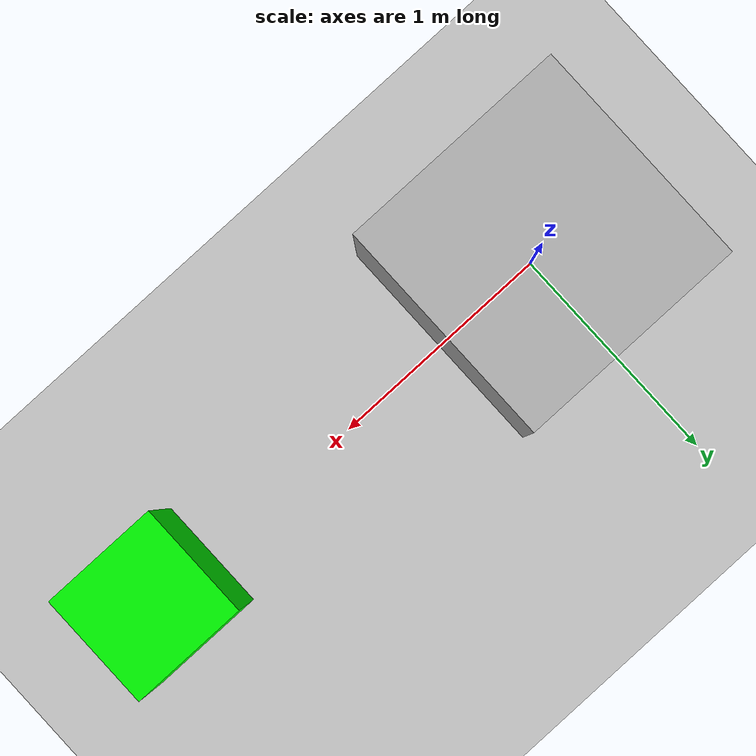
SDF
<?xml version="1.0" ?>
<sdf version="1.6">
  <world name="depth_camera_world">
    <include>
      <uri>model://sun</uri>
    </include>
    <include>
      <uri>model://ground_plane</uri>
    </include>

    <model name="box_robot">
      <pose>0 0 0.5 0 0 0</pose>
      <link name="base_link">
        <inertial>
          <mass>1.0</mass>
          <inertia>
            <ixx>0.083</ixx>
            <iyy>0.083</iyy>
            <izz>0.083</izz>
            <ixy>0.0</ixy>
            <ixz>0.0</ixz>
            <iyz>0.0</iyz>
          </inertia>
        </inertial>
        <visual name="visual">
          <geometry>
            <box>
              <size>1 1 1</size>
            </box>
          </geometry>
        </visual>
        <collision name="collision">
          <geometry>
            <box>
              <size>1 1 1</size>
            </box>
          </geometry>
        </collision>

        <sensor name="camera" type="depth">
          <always_on>true</always_on>
          <update_rate>30.0</update_rate>
          <camera>
            <horizontal_fov>1.047</horizontal_fov>
            <image>
              <width>640</width>
              <height>480</height>
              <format>R8G8B8</format>
            </image>
            <clip>
              <near>0.1</near>
              <far>10</far>
            </clip>
          </camera>
          <plugin name="camera_controller" filename="libgazebo_ros_depth_camera.so">
            <ros>true</ros>
            <alwaysOn>true</alwaysOn>
            <updateRate>30.0</updateRate>
            <cameraName>camera</cameraName>
            <imageTopicName>image_raw</imageTopicName>
            <cameraInfoTopicName>camer-info</cameraInfoTopicName>
            <depthImageTopicName>depth/image_raw</depthImageTopicName>
            <depthImageInfoTopicName>depth/camer-info</depthImageInfoTopicName>
            <pointCloudTopicName>depth/points</pointCloudTopicName>
            <frameName>camera_link</frameName>
            <hackBaseline>0.07</hackBaseline>
            <Cx>319.5</Cx>
            <Cy>239.5</Cy>
            <fx>277.19</fx>
            <fy>277.19</fy>
            <distortionK1>0.0</distortionK1>
            <distortionK2>0.0</distortionK2>
            <distortionK3>0.0</distortionK3>
            <distortionT1>0.0</distortionT1>
            <distortionT2>0.0</distortionT2>
          </plugin>
        </sensor>

      </link>
    </model>

    <model name="obstacle">
      <pose>2 0 0.5 0 0 0</pose>
      <link name="link">
        <visual name="visual">
          <geometry>
            <box>
              <size>0.5 0.5 1</size>
            </box>
          </geometry>
          <material>
            <ambient>0.0 1.0 0.0 1</ambient>
            <diffuse>0.0 1.0 0.0 1</diffuse>
            <specular>0.0 1.0 0.0 1</specular>
          </material>
        </visual>
        <collision name="collision">
          <geometry>
            <box>
              <size>0.5 0.5 1</size>
            </box>
          </geometry>
        </collision>
        <inertial>
          <mass>1.0</mass>
          <inertia>
            <ixx>0.083</ixx>
            <iyy>0.083</iyy>
            <izz>0.083</izz>
            <ixy>0.0</ixy>
            <ixz>0.0</ixz>
            <iyz>0.0</iyz>
          </inertia>
        </inertial>
      </link>
    </model>
  </world>
</sdf>
